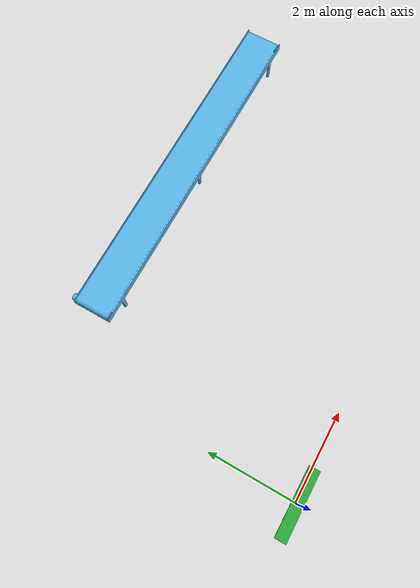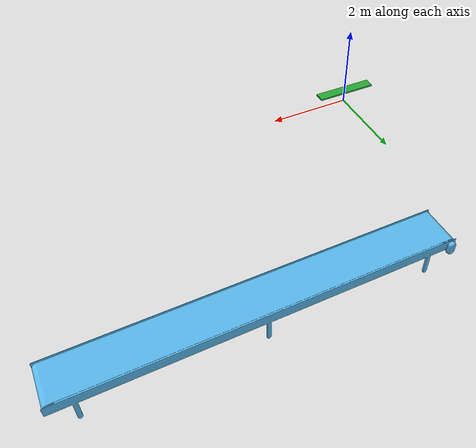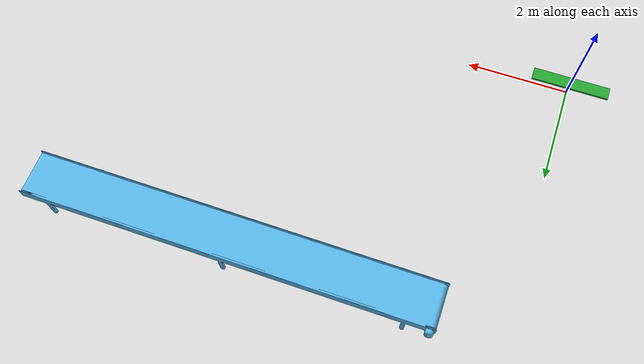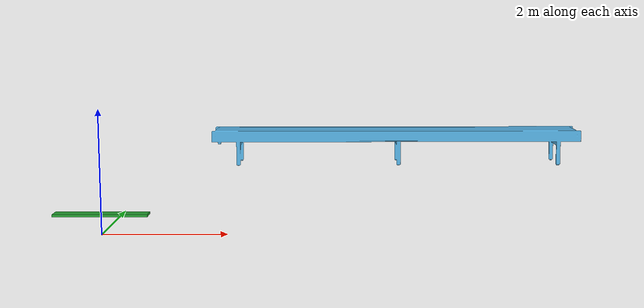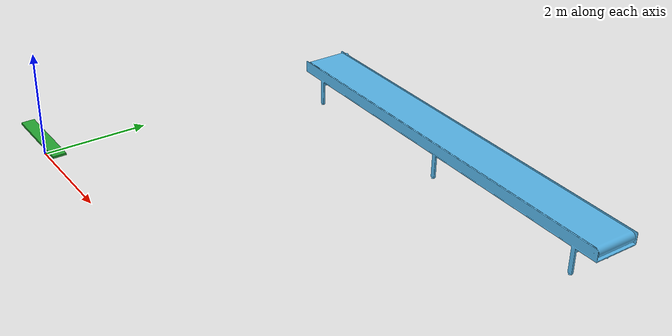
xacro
<?xml version="1.0"?>

<robot name="conveyor_belt" xmlns:xacro="http://ros.org/wiki/xacro">

  <!-- world link -->
  <link name="world" />

  <link name = "conveyor_belt_fixed">
    <visual>
      <origin xyz="0 0 0" rpy="0 0 0"/>
      <geometry>
        <mesh filename="package://conveyor_belt_simulation/meshes/conveyor_belt.dae"/>
      </geometry>
    </visual>

    <inertial>
      <origin xyz="0 0 0" rpy="0 0 0" />
      <inertia ixx="100" ixy="0" ixz="0"
               iyy="1781.5" iyz="0"
               izz="1784.72" />
      <mass value="100" />
    </inertial>
    <collision>
      <origin xyz="0 0 0" rpy="0 0 0"/>
      <geometry>
        <box size = "1.5 0.25 0.4" />
      </geometry>
    </collision>
  </link>

  <link name = "conveyor_belt_moving">
    <visual>
      <origin xyz="0 0 0" rpy="0 0 0"/>
      <geometry>
        <box size = "1.5 0.25 0.04" />
      </geometry>
    </visual>
    <collision>
      <origin xyz="0 0 0" rpy="0 0 0"/>
      <geometry>
        <box size = "1.5 0.25 0.04" />
      </geometry>
    </collision>
    <inertial>
      <origin xyz="0 0 0" rpy="0 0 0"/>
      <mass value="100"/>
      <inertia ixx="100" iyy="1781.5" izz="1784.72" ixy="0" iyz="0" ixz="0"/>
    </inertial>
  </link>

  <gazebo reference="conveyor_belt_moving">
    <material>Gazebo/GreenTransparent</material>
  </gazebo>

  <joint name="conveyor_belt_fixed_joint" type="fixed">
    <parent link="world" />
    <child link="conveyor_belt_fixed" />
    <origin xyz = "0 0 0.35" rpy = "0 0 0"/>
  </joint>

  <joint name = "belt_joint" type = "prismatic">
    <parent link = "conveyor_belt_fixed"/>
    <child link = "conveyor_belt_moving"/>
    <origin xyz = "0 0 -0.02" rpy = "0 0 0"/>
    <limit effort = "30" velocity = "100" lower = "0" upper = "1.0" />
    <axis xyz = "1 0 0"/>
  </joint>

  <!-- ros_control plugin -->
  <gazebo>
    <plugin name="gazebo_ros_control" filename="libgazebo_ros_control.so"/>
  </gazebo>

  <gazebo>
    <plugin name="conveyor_belt_plugin" filename="libROSConveyorBeltPlugin.so">
      <enable_topic>conveyor_enable</enable_topic>
      <population_rate_modifier_topic>population/rate_modifier</population_rate_modifier_topic>
      <link>conveyor_belt_moving</link>
      <power>0</power>
      <update_rate>20</update_rate>
    </plugin>
  </gazebo>

</robot>
